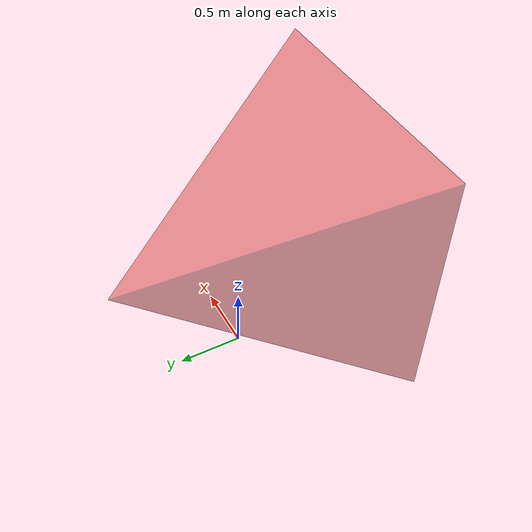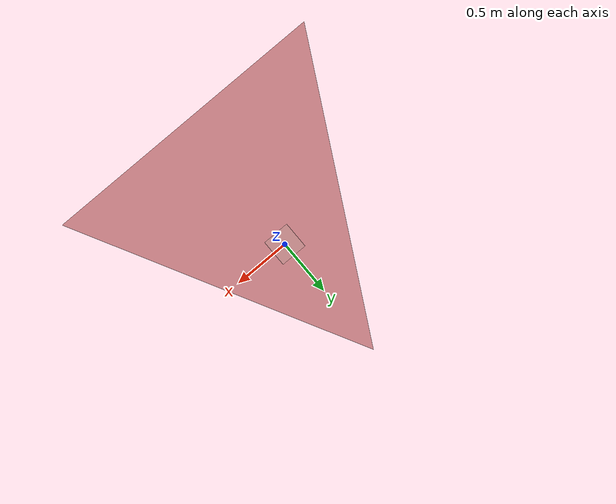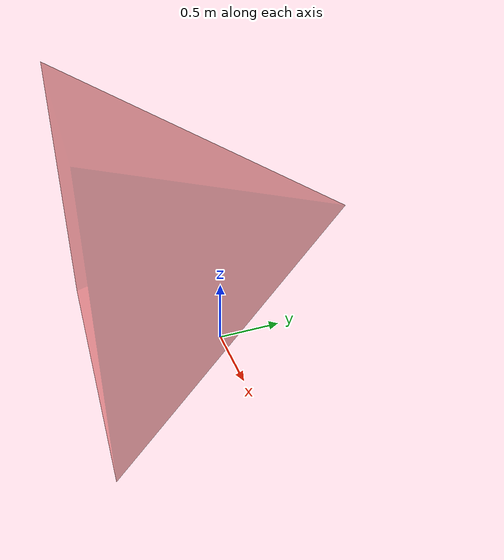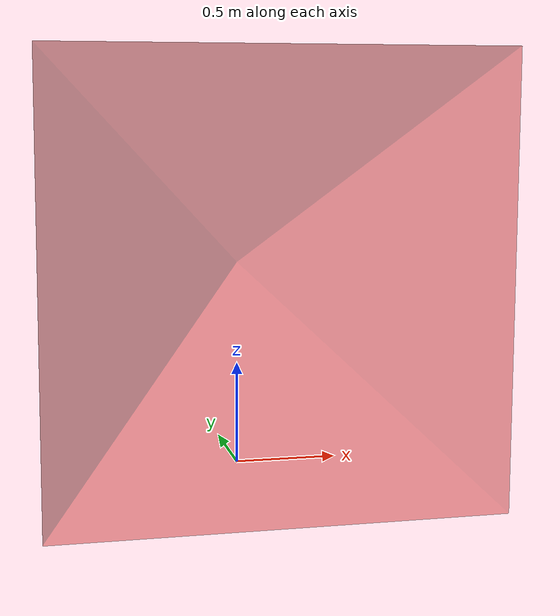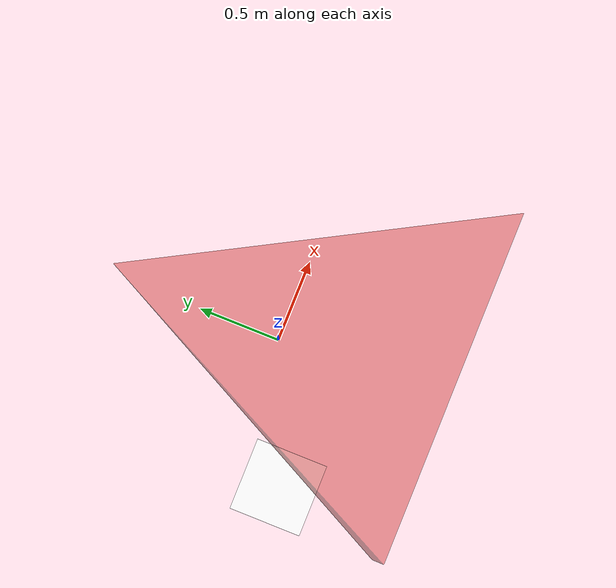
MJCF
<mujoco>
    <option density="1.2" viscosity="2e-05" wind="0 0 0"/>
    <worldbody>
        <light name="top" pos="0 0 5"/>
        <!-- Body -->

    <body name="body" pos="0 0 1" euler="0 0 0">
        <freejoint/>
        <!-- Main Wing -->
        <geom name="stl-wing"  density="1.67" rgba="0.8 0.2 0.2 0.5" type="mesh" mesh="stl-wing-mesh"/>
        <camera name="fixed" pos="-100 -100 -10" xyaxes="1 0 0 0 1 2"/>
        <camera name="track" pos="0 0 0" xyaxes="1 2 0 0 1 2" mode="track"/>
    </body>

        <!-- Landing Platform -->
        <body name="platform" pos="0 0 0">
            <geom name="platform-geom" type="box" size="1500 1500 1" rgba="1 1 1 1" pos="0 0 -80"/>
        </body>
    </worldbody>

            <asset>
                <mesh name="stl-wing-mesh" vertex="0.0 0.0 0.0 1.0 -1.0 1.0 1.0 -1.0 -1.0 -1.0 -1.0 -1.0 -1.0 -1.0 1.0 0.0 1.0 0.0" face="1 2 0 2 3 0 3 4 0 4 1 0 2 1 5 3 2 5 4 3 5 1 4 5"/>
            </asset>
</mujoco>
